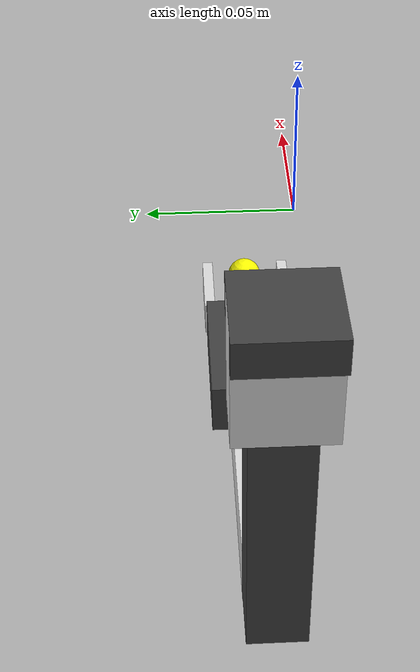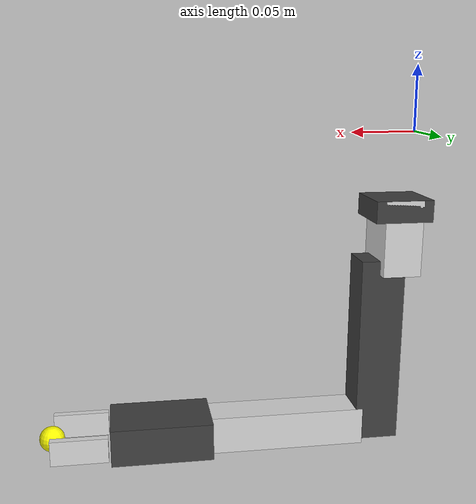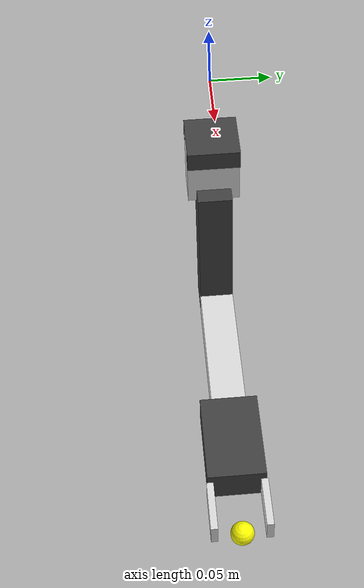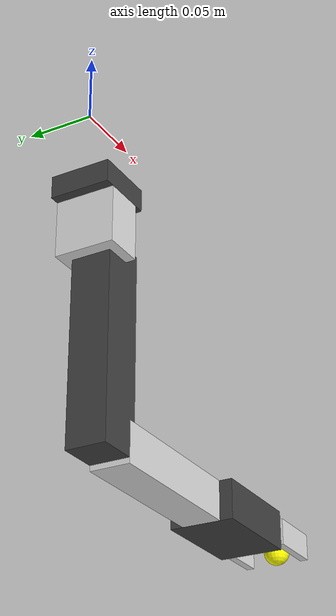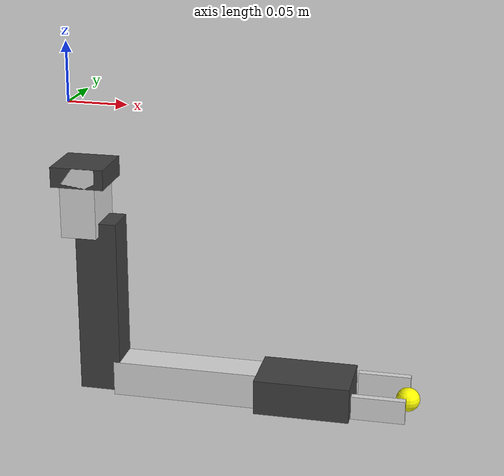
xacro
<?xml version="1.0"?>
<robot xmlns:xacro="http://www.ros.org/wiki/xacro" name="openmanip_x">

  <xacro:arg name="tool" default="none"/>
  <xacro:property name="has_tool" value="${'$(arg tool)' == 'rod'}"/>
  <xacro:property name="stow_j1" value="0.0"/>
  <!-- With the 0.50 m contact tool that pose puts the rod through the frame;
       this one points the rod backwards under the body, above the gear feet,
       with no static pitch moment. -->
  <xacro:property name="stow_j2" value="${0.9 if has_tool else -1.1}"/>
  <xacro:property name="stow_j3" value="${1.1 if has_tool else 1.2}"/>
  <xacro:property name="stow_j4" value="${1.3 if has_tool else 0.9}"/>

  <xacro:macro name="omx_link" params="name mass com ixx iyy izz ixy ixz iyz box box_xyz rgba">
    <link name="${name}">
      <inertial>
        <mass value="${mass}"/>
        <origin xyz="${com}" rpy="0 0 0"/>
        <inertia ixx="${ixx}" iyy="${iyy}" izz="${izz}" ixy="${ixy}" ixz="${ixz}" iyz="${iyz}"/>
      </inertial>
      <visual>
        <origin xyz="${box_xyz}" rpy="0 0 0"/>
        <geometry><box size="${box}"/></geometry>
        <material name="${name}_mat"><color rgba="${rgba}"/></material>
      </visual>
      <collision>
        <origin xyz="${box_xyz}" rpy="0 0 0"/>
        <geometry><box size="${box}"/></geometry>
      </collision>
    </link>
  </xacro:macro>

  <xacro:macro name="omx_joint" params="name parent child xyz axis lower upper">
    <joint name="${name}" type="revolute">
      <parent link="${parent}"/>
      <child link="${child}"/>
      <origin xyz="${xyz}" rpy="0 0 0"/>
      <axis xyz="${axis}"/>
      <limit lower="${lower}" upper="${upper}" effort="4.1" velocity="4.8"/>
      <dynamics damping="0.05" friction="0.01"/>
    </joint>
  </xacro:macro>

  <link name="base_link"/>

  <!-- Base plate, fixed to the drone. -->
  <xacro:omx_link name="openmanip_x_link1" mass="7.9119962e-02"
      com="3.0876154e-04 0 -1.2176461e-04"
      ixx="1.2505234e-05" iyy="2.1898364e-05" izz="1.9267361e-05"
      ixy="0" ixz="-1.7855208e-07" iyz="0"
      box="0.045 0.045 0.017" box_xyz="0.012 0 0.0085" rgba="0.25 0.25 0.25 1"/>
  <joint name="arm_mount" type="fixed">
    <parent link="base_link"/>
    <child link="openmanip_x_link1"/>
    <origin xyz="0 0 -0.05" rpy="3.14159 0 0"/>
  </joint>

  <xacro:omx_link name="openmanip_x_link2" mass="9.8406837e-02"
      com="-3.0184870e-04 5.4043684e-04 4.7433464e-02"
      ixx="3.4543422e-05" iyy="3.2689329e-05" izz="1.8850320e-05"
      ixy="-1.6031095e-08" ixz="-3.8375155e-07" iyz="2.8511935e-08"
      box="0.03 0.045 0.0595" box_xyz="0 0 0.03" rgba="0.85 0.85 0.85 1"/>
  <xacro:omx_joint name="joint1" parent="openmanip_x_link1" child="openmanip_x_link2"
      xyz="0.012 0 0" axis="0 0 1" lower="-3.14159" upper="3.14159"/>

  <xacro:omx_link name="openmanip_x_link3" mass="1.3850917e-01"
      com="1.0308393e-02 3.7743363e-04 1.0170197e-01"
      ixx="3.3055381e-04" iyy="3.4290447e-04" izz="6.0346498e-05"
      ixy="-9.7940978e-08" ixz="-3.8505711e-05" iyz="-1.5717516e-06"
      box="0.035 0.03 0.15" box_xyz="0.012 0 0.064" rgba="0.25 0.25 0.25 1"/>
  <xacro:omx_joint name="joint2" parent="openmanip_x_link2" child="openmanip_x_link3"
      xyz="0 0 0.0595" axis="0 1 0" lower="-1.5" upper="1.5"/>

  <xacro:omx_link name="openmanip_x_link4" mass="1.3274562e-01"
      com="9.0909590e-02 3.8929816e-04 2.2413279e-04"
      ixx="3.0654178e-05" iyy="2.4230292e-04" izz="2.5155057e-04"
      ixy="-1.2764155e-06" ixz="-2.6874417e-07" iyz="1.1559550e-08"
      box="0.124 0.03 0.03" box_xyz="0.062 0 0" rgba="0.85 0.85 0.85 1"/>
  <xacro:omx_joint name="joint3" parent="openmanip_x_link3" child="openmanip_x_link4"
      xyz="0.024 0 0.128" axis="0 1 0" lower="-1.5" upper="1.4"/>

  <!-- Wrist + gripper body. With the contact tool the fingers are not modelled:
       their mass is folded in and the box runs on over them. -->
  <xacro:omx_link name="openmanip_x_link5" mass="${1.4527573e-01 if has_tool else 1.4327573e-01}"
      com="4.4206755e-02 3.6839985e-07 8.9142216e-03"
      ixx="8.0870749e-05" iyy="7.5980465e-05" izz="9.3127351e-05"
      ixy="0" ixz="-1.0157896e-06" iyz="0"
      box="${'0.10' if has_tool else '0.08'} 0.05 0.03" box_xyz="${0.05 if has_tool else 0.04} 0 0"
      rgba="0.25 0.25 0.25 1"/>
  <xacro:omx_joint name="joint4" parent="openmanip_x_link4" child="openmanip_x_link5"
      xyz="0.124 0 0" axis="0 1 0" lower="-1.7" upper="1.97"/>

  <link name="end_effector_link">
    <inertial>
      <mass value="0.001"/>
      <inertia ixx="1e-8" iyy="1e-8" izz="1e-8" ixy="0" ixz="0" iyz="0"/>
    </inertial>
    <visual>
      <geometry><sphere radius="0.01"/></geometry>
      <material name="ee_mat"><color rgba="1 1 0 1"/></material>
    </visual>
  </link>
  <joint name="j_ee" type="fixed">
    <parent link="openmanip_x_link5"/>
    <child link="end_effector_link"/>
    <origin xyz="0.126 0 0" rpy="0 0 0"/>
  </joint>

  <xacro:unless value="${has_tool}">
    <xacro:macro name="omx_finger" params="side sign">
      <link name="gripper_${side}_link">
        <inertial>
          <mass value="1.0e-03"/>
          <inertia ixx="1.0e-06" iyy="1.0e-06" izz="1.0e-06" ixy="0" ixz="0" iyz="0"/>
        </inertial>
        <visual>
          <origin xyz="0.02215 ${sign * 0.002} 0" rpy="0 0 0"/>
          <geometry><box size="0.0443 0.006 0.02"/></geometry>
          <material name="gripper_${side}_mat"><color rgba="0.85 0.85 0.85 1"/></material>
        </visual>
        <collision>
          <origin xyz="0.02215 ${sign * 0.002} 0" rpy="0 0 0"/>
          <geometry><box size="0.0443 0.006 0.02"/></geometry>
        </collision>
      </link>
      <joint name="gripper_${side}_joint" type="prismatic">
        <parent link="openmanip_x_link5"/>
        <child link="gripper_${side}_link"/>
        <origin xyz="0.0817 ${sign * 0.021} 0" rpy="0 0 0"/>
        <axis xyz="0 ${sign} 0"/>
        <!-- The mimic finger 5 N: it stands in for the linkage (see the model's SDF). -->
        <limit lower="-0.010" upper="0.019" effort="${1 if side == 'left' else 5}" velocity="4.8"/>
        <xacro:if value="${side == 'right'}">
          <mimic joint="gripper_left_joint" multiplier="1"/>
        </xacro:if>
      </joint>
    </xacro:macro>
    <xacro:omx_finger side="left" sign="1"/>
    <xacro:omx_finger side="right" sign="-1"/>
  </xacro:unless>

  <xacro:if value="${has_tool}">
    <!-- Contact tool, as in models/x500_with_openmanip_x_tool/model.sdf. -->
    <link name="tool_link">
      <inertial>
        <origin xyz="0.35 0 0"/>
        <mass value="0.22"/>
        <inertia ixx="3.5e-4" iyy="5.6e-3" izz="5.6e-3" ixy="0" ixz="0" iyz="0"/>
      </inertial>
      <visual>
        <origin xyz="0.25 0 0" rpy="0 1.5708 0"/>
        <geometry><cylinder radius="0.006" length="0.5"/></geometry>
      </visual>
      <visual>
        <origin xyz="0.5 0 0" rpy="1.5708 0 0"/>
        <geometry><cylinder radius="0.015" length="0.2"/></geometry>
      </visual>
      <collision>
        <origin xyz="0.5 0.1 0"/>
        <geometry><sphere radius="0.015"/></geometry>
      </collision>
      <collision>
        <origin xyz="0.5 -0.1 0"/>
        <geometry><sphere radius="0.015"/></geometry>
      </collision>
    </link>
    <joint name="j_tool" type="fixed">
      <parent link="end_effector_link"/>
      <child link="tool_link"/>
    </joint>
    <link name="tool_tip"/>
    <joint name="j_tool_tip" type="fixed">
      <parent link="tool_link"/>
      <child link="tool_tip"/>
      <origin xyz="0.5 0 0"/>
    </joint>
  </xacro:if>

  <xacro:arg name="sim_mode" default="gz"/>
  <xacro:macro name="omx_control_joint" params="name initial">
    <joint name="${name}">
      <command_interface name="position"/>
      <state_interface name="position">
        <param name="initial_value">${initial}</param>
      </state_interface>
      <state_interface name="velocity"/>
    </joint>
  </xacro:macro>
  <ros2_control name="openmanip_x_hw" type="system">
    <hardware>
      <xacro:if value="${'$(arg sim_mode)' == 'gz'}">
        <plugin>gz_ros2_control/GazeboSimSystem</plugin>
      </xacro:if>
      <xacro:unless value="${'$(arg sim_mode)' == 'gz'}">
        <plugin>mock_components/GenericSystem</plugin>
      </xacro:unless>
    </hardware>
    <xacro:omx_control_joint name="joint1" initial="${stow_j1}"/>
    <xacro:omx_control_joint name="joint2" initial="${stow_j2}"/>
    <xacro:omx_control_joint name="joint3" initial="${stow_j3}"/>
    <xacro:omx_control_joint name="joint4" initial="${stow_j4}"/>
    <xacro:unless value="${has_tool}">
      <xacro:omx_control_joint name="gripper_left_joint" initial="0.0"/>
      <!-- Mimic joints take no command interface: the hardware drives it. -->
      <joint name="gripper_right_joint">
        <state_interface name="position"/>
        <state_interface name="velocity"/>
      </joint>
    </xacro:unless>
  </ros2_control>

</robot>
